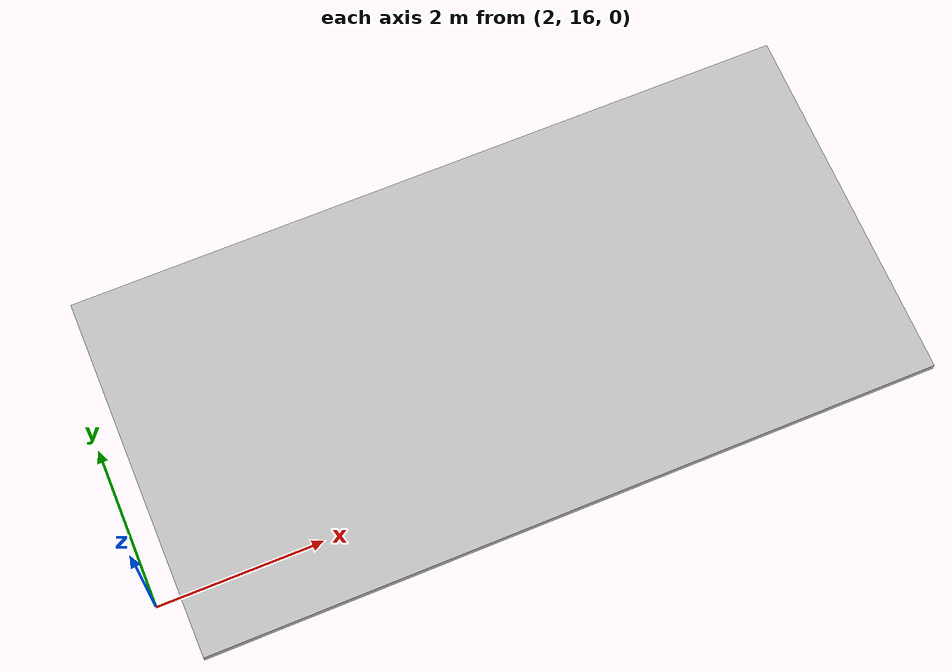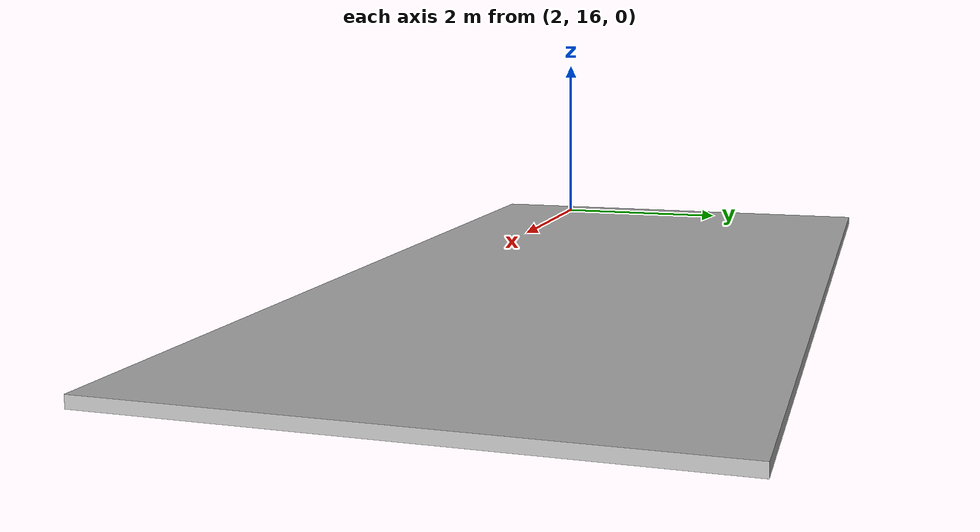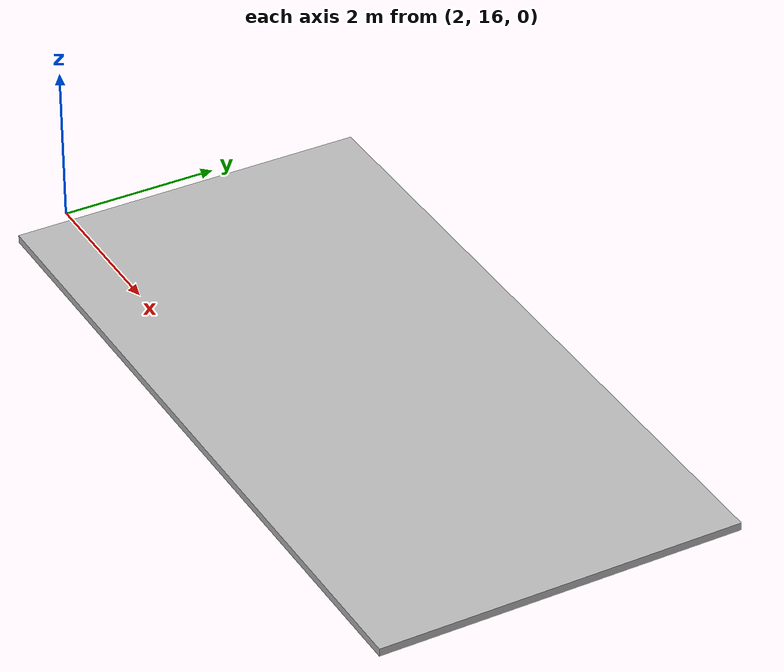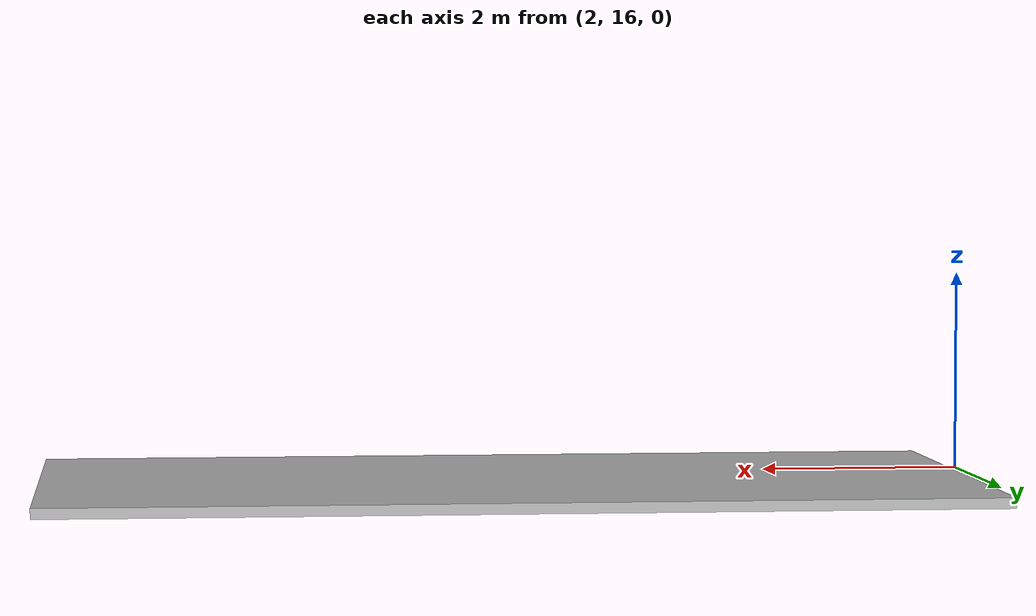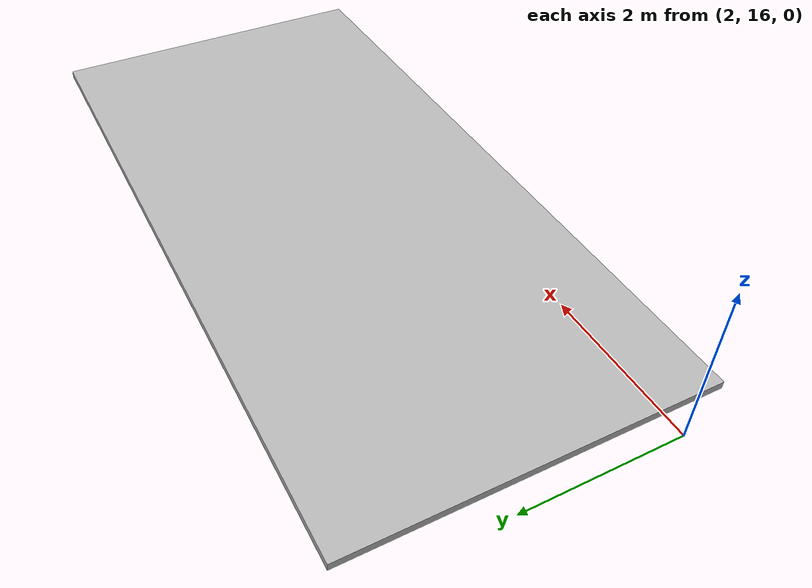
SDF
<?xml version="1.0" ?>
<sdf version="1.7">
  <model name="pedestrian_zebra">
    <pose frame=''>6.786 17.514 0.05 0 0 0</pose>
    <static>true</static>
    <link name="link_12">
      <collision name="collision">
        <geometry>
          <box>
            <size>9 4.572 .1</size>
          </box>
        </geometry>
      </collision>
      <visual name="visual">
        <cast_shadows>false</cast_shadows>
        <geometry>
          <box>
            <size>9 4.572 .1</size>
          </box>
        </geometry>
        <material>
          <script>
            <uri>model://pedestrian_zebra/materials/scripts</uri>
            <uri>model://pedestrian_zebra/materials/textures</uri>
            <name>ZebraMaterial/Image</name>
          </script>
        </material>
      </visual>
    </link>
  </model>
</sdf>
